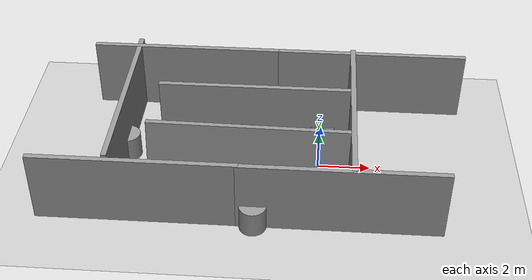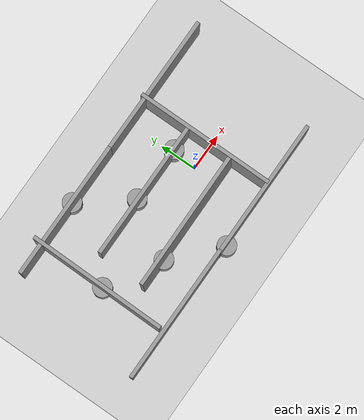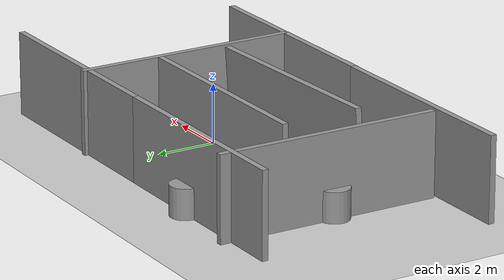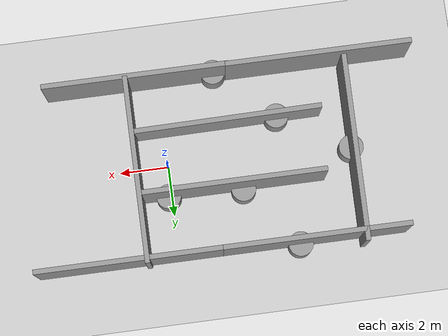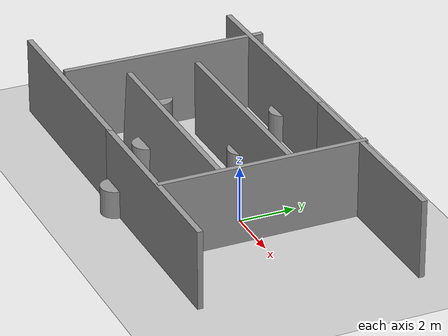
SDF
<sdf version="1.6">
 <world name="default">
  <light name="sun" type="directional">
   <pose>0 0 10 0 -0 0</pose>
   <diffuse>0.8 0.8 0.8 1</diffuse>
   <specular>0.2 0.2 0.2 1</specular>
   <attenuation>
    <range>1000</range>
    <constant>0.9</constant>
    <linear>0.01</linear>
    <quadratic>0.001</quadratic>
   </attenuation>
   <direction>-0.5 0.1 -0.9</direction>
  </light>
  <model name="ground_plane">
   <static>1</static>
   <link name="link">
    <collision name="collision">
     <geometry><plane><normal>0 0 1</normal><size>100 100</size></plane></geometry>
     <surface><friction><ode><mu>100</mu><mu2>50</mu2></ode></friction></surface>
    </collision>
    <visual name="visual">
     <cast_shadows>0</cast_shadows>
     <geometry><plane><normal>0 0 1</normal><size>100 100</size></plane></geometry>
     <material>
      <script><uri>file://media/materials/scripts/gazebo.material</uri><name>Gazebo/Grey</name></script>
     </material>
    </visual>
    <velocity_decay><linear>0</linear><angular>0</angular></velocity_decay>
   </link>
  </model>
  <physics name="default_physics" default="0" type="ode">
   <max_step_size>0.001</max_step_size>
   <real_time_factor>1</real_time_factor>
   <real_time_update_rate>1000</real_time_update_rate>
  </physics>
  <scene><ambient>0.4 0.4 0.4 1</ambient><background>0.7 0.7 0.7 1</background><shadows>1</shadows></scene>
  <spherical_coordinates>
   <surface_model>EARTH_WGS84</surface_model>
   <latitude_deg>0</latitude_deg>
   <longitude_deg>0</longitude_deg>
   <elevation>0</elevation>
   <heading_deg>0</heading_deg>
  </spherical_coordinates>
  <model name="grey_wall">
   <static>1</static>
   <link name="link">
    <pose>0 0 1.4 0 -0 0</pose>
    <collision name="collision"><geometry><box><size>7.5 0.2 2.8</size></box></geometry></collision>
    <visual name="visual">
     <cast_shadows>0</cast_shadows>
     <geometry><box><size>7.5 0.2 2.8</size></box></geometry>
     <material>
      <script>
       <uri>model://grey_wall/materials/scripts</uri>
       <uri>model://grey_wall/materials/textures</uri>
       <name>vrc/grey_wall</name>
      </script>
     </material>
    </visual>
    <velocity_decay><linear>0</linear><angular>0</angular></velocity_decay>
   </link>
   <pose>-5.51825 3.80229 0 0 -0 0</pose>
  </model>
  <model name="grey_wall_0">
   <static>1</static>
   <link name="link">
    <pose>0 0 1.4 0 -0 0</pose>
    <collision name="collision"><geometry><box><size>7.5 0.2 2.8</size></box></geometry></collision>
    <visual name="visual">
     <cast_shadows>0</cast_shadows>
     <geometry><box><size>7.5 0.2 2.8</size></box></geometry>
     <material>
      <script>
       <uri>model://grey_wall/materials/scripts</uri>
       <uri>model://grey_wall/materials/textures</uri>
       <name>vrc/grey_wall</name>
      </script>
     </material>
    </visual>
    <velocity_decay><linear>0</linear><angular>0</angular></velocity_decay>
   </link>
   <pose>-6.54142 -3.44239 0 0 -0 0</pose>
  </model>
  <model name="grey_wall_1">
   <static>1</static>
   <link name="link">
    <pose>0 0 1.4 0 -0 0</pose>
    <collision name="collision"><geometry><box><size>7.5 0.2 2.8</size></box></geometry></collision>
    <visual name="visual">
     <cast_shadows>0</cast_shadows>
     <geometry><box><size>7.5 0.2 2.8</size></box></geometry>
     <material>
      <script>
       <uri>model://grey_wall/materials/scripts</uri>
       <uri>model://grey_wall/materials/textures</uri>
       <name>vrc/grey_wall</name>
      </script>
     </material>
    </visual>
    <velocity_decay><linear>0</linear><angular>0</angular></velocity_decay>
   </link>
   <pose>-7.48874 0.518977 0 0 0 -1.5818</pose>
  </model>
  <model name="grey_wall_3">
   <static>1</static>
   <link name="link">
    <pose>0 0 1.4 0 -0 0</pose>
    <collision name="collision"><geometry><box><size>7.5 0.2 2.8</size></box></geometry></collision>
    <visual name="visual">
     <cast_shadows>0</cast_shadows>
     <geometry><box><size>7.5 0.2 2.8</size></box></geometry>
     <material>
      <script>
       <uri>model://grey_wall/materials/scripts</uri>
       <uri>model://grey_wall/materials/textures</uri>
       <name>vrc/grey_wall</name>
      </script>
     </material>
    </visual>
    <velocity_decay><linear>0</linear><angular>0</angular></velocity_decay>
   </link>
   <pose>1.22963 0.273888 0.00212 0 0 -1.57102</pose>
  </model>
  <model name="grey_wall_4">
   <static>1</static>
   <link name="link">
    <pose>0 0 1.4 0 -0 0</pose>
    <collision name="collision"><geometry><box><size>7.5 0.2 2.8</size></box></geometry></collision>
    <visual name="visual">
     <cast_shadows>0</cast_shadows>
     <geometry><box><size>7.5 0.2 2.8</size></box></geometry>
     <material>
      <script>
       <uri>model://grey_wall/materials/scripts</uri>
       <uri>model://grey_wall/materials/textures</uri>
       <name>vrc/grey_wall</name>
      </script>
     </material>
    </visual>
    <velocity_decay><linear>0</linear><angular>0</angular></velocity_decay>
   </link>
   <pose>0.829727 -3.45969 0 0 -0 0</pose>
  </model>
  <model name="grey_wall_5">
   <static>1</static>
   <link name="link">
    <pose>0 0 1.4 0 -0 0</pose>
    <collision name="collision"><geometry><box><size>7.5 0.2 2.8</size></box></geometry></collision>
    <visual name="visual">
     <cast_shadows>0</cast_shadows>
     <geometry><box><size>7.5 0.2 2.8</size></box></geometry>
     <material>
      <script>
       <uri>model://grey_wall/materials/scripts</uri>
       <uri>model://grey_wall/materials/textures</uri>
       <name>vrc/grey_wall</name>
      </script>
     </material>
    </visual>
    <velocity_decay><linear>0</linear><angular>0</angular></velocity_decay>
   </link>
   <pose>-2.51343 1.24085 0 0 -0 0</pose>
  </model>
  <model name="grey_wall_6">
   <static>1</static>
   <link name="link">
    <pose>0 0 1.4 0 -0 0</pose>
    <collision name="collision"><geometry><box><size>7.5 0.2 2.8</size></box></geometry></collision>
    <visual name="visual">
     <cast_shadows>0</cast_shadows>
     <geometry><box><size>7.5 0.2 2.8</size></box></geometry>
     <material>
      <script>
       <uri>model://grey_wall/materials/scripts</uri>
       <uri>model://grey_wall/materials/textures</uri>
       <name>vrc/grey_wall</name>
      </script>
     </material>
    </visual>
    <velocity_decay><linear>0</linear><angular>0</angular></velocity_decay>
   </link>
   <pose>1.96609 3.80112 0 0 -0 0</pose>
  </model>
  <gravity>0 0 -9.8</gravity>
  <magnetic_field>6e-06 2.3e-05 -4.2e-05</magnetic_field>
  <atmosphere type="adiabatic"/>
  <model name="unit_cylinder_0">
   <pose>-7.47157 0.269205 0.499998 3e-06 -3e-06 0.001615</pose>
   <link name="link">
    <inertial>
     <mass>1</mass>
     <inertia><ixx>0.145833</ixx><ixy>0</ixy><ixz>0</ixz><iyy>0.145833</iyy><iyz>0</iyz><izz>0.125</izz></inertia>
    </inertial>
    <collision name="collision">
     <geometry><cylinder><radius>0.5</radius><length>1</length></cylinder></geometry>
    </collision>
    <visual name="visual">
     <geometry><cylinder><radius>0.5</radius><length>1</length></cylinder></geometry>
     <material>
      <script><name>Gazebo/Grey</name><uri>file://media/materials/scripts/gazebo.material</uri></script>
     </material>
    </visual>
   </link>
  </model>
  <model name="unit_cylinder_1">
   <pose>-4.91328 3.90707 0.499995 -0 -3e-06 -9e-06</pose>
   <link name="link">
    <inertial>
     <mass>1</mass>
     <inertia><ixx>0.145833</ixx><ixy>0</ixy><ixz>0</ixz><iyy>0.145833</iyy><iyz>0</iyz><izz>0.125</izz></inertia>
    </inertial>
    <collision name="collision">
     <geometry><cylinder><radius>0.5</radius><length>1</length></cylinder></geometry>
    </collision>
    <visual name="visual">
     <geometry><cylinder><radius>0.5</radius><length>1</length></cylinder></geometry>
     <material>
      <script><name>Gazebo/Grey</name><uri>file://media/materials/scripts/gazebo.material</uri></script>
     </material>
    </visual>
   </link>
  </model>
  <model name="unit_cylinder_2">
   <pose>-2.92234 1.40221 0.499994 -3e-06 -1e-06 -0</pose>
   <link name="link">
    <inertial>
     <mass>1</mass>
     <inertia><ixx>0.145833</ixx><ixy>0</ixy><ixz>0</ixz><iyy>0.145833</iyy><iyz>0</iyz><izz>0.125</izz></inertia>
    </inertial>
    <collision name="collision">
     <geometry><cylinder><radius>0.5</radius><length>1</length></cylinder></geometry>
    </collision>
    <visual name="visual">
     <geometry><cylinder><radius>0.5</radius><length>1</length></cylinder></geometry>
     <material>
      <script><name>Gazebo/Grey</name><uri>file://media/materials/scripts/gazebo.material</uri></script>
     </material>
    </visual>
   </link>
  </model>
  <model name="unit_cylinder_3">
   <pose>-4.62319 -1.40295 0.499999 1e-06 1e-06 0.002119</pose>
   <link name="link">
    <inertial>
     <mass>1</mass>
     <inertia><ixx>0.145833</ixx><ixy>0</ixy><ixz>0</ixz><iyy>0.145833</iyy><iyz>0</iyz><izz>0.125</izz></inertia>
    </inertial>
    <collision name="collision">
     <geometry><cylinder><radius>0.5</radius><length>1</length></cylinder></geometry>
    </collision>
    <visual name="visual">
     <geometry><cylinder><radius>0.5</radius><length>1</length></cylinder></geometry>
     <material>
      <script><name>Gazebo/Grey</name><uri>file://media/materials/scripts/gazebo.material</uri></script>
     </material>
    </visual>
   </link>
  </model>
  <model name="unit_cylinder_4">
   <pose>0.118175 1.31174 0.499993 -3e-06 3e-06 0</pose>
   <link name="link">
    <inertial>
     <mass>1</mass>
     <inertia><ixx>0.145833</ixx><ixy>0</ixy><ixz>0</ixz><iyy>0.145833</iyy><iyz>0</iyz><izz>0.125</izz></inertia>
    </inertial>
    <collision name="collision">
     <geometry><cylinder><radius>0.5</radius><length>1</length></cylinder></geometry>
    </collision>
    <visual name="visual">
     <geometry><cylinder><radius>0.5</radius><length>1</length></cylinder></geometry>
     <material>
      <script><name>Gazebo/Grey</name><uri>file://media/materials/scripts/gazebo.material</uri></script>
     </material>
    </visual>
   </link>
  </model>
  <model name="unit_cylinder_5">
   <pose>-2.29141 -3.5344 0.499998 3e-06 -3e-06 -3e-06</pose>
   <link name="link">
    <inertial>
     <mass>1</mass>
     <inertia><ixx>0.145833</ixx><ixy>0</ixy><ixz>0</ixz><iyy>0.145833</iyy><iyz>0</iyz><izz>0.125</izz></inertia>
    </inertial>
    <collision name="collision">
     <geometry><cylinder><radius>0.5</radius><length>1</length></cylinder></geometry>
    </collision>
    <visual name="visual">
     <geometry><cylinder><radius>0.5</radius><length>1</length></cylinder></geometry>
     <material>
      <script><name>Gazebo/Grey</name><uri>file://media/materials/scripts/gazebo.material</uri></script>
     </material>
    </visual>
   </link>
  </model>
  <model name="grey_wall_7">
   <static>1</static>
   <link name="link">
    <pose>0 0 1.4 0 -0 0</pose>
    <collision name="collision"><geometry><box><size>7.5 0.2 2.8</size></box></geometry></collision>
    <visual name="visual">
     <cast_shadows>0</cast_shadows>
     <geometry><box><size>7.5 0.2 2.8</size></box></geometry>
     <material>
      <script>
       <uri>model://grey_wall/materials/scripts</uri>
       <uri>model://grey_wall/materials/textures</uri>
       <name>vrc/grey_wall</name>
      </script>
     </material>
    </visual>
   </link>
   <pose>-2.66775 -1.40097 0 0.05278 -0.018843 -3.13445</pose>
  </model>
 </world>
</sdf>
